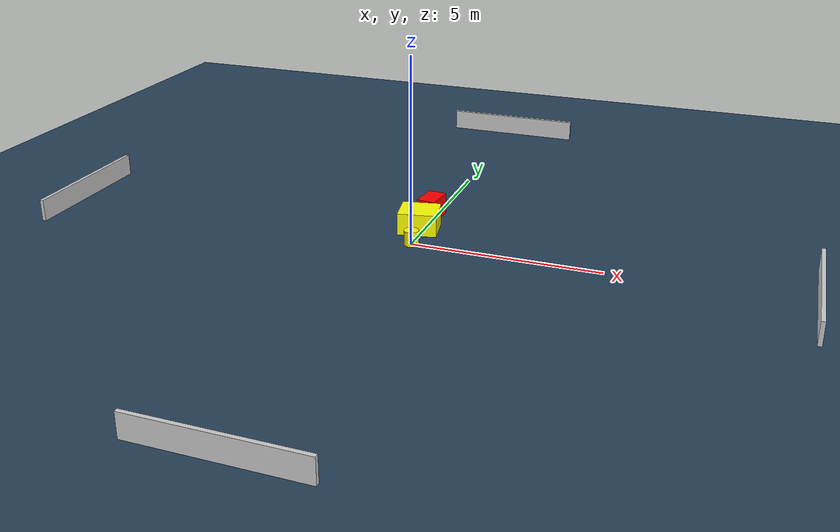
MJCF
<?xml version="1.0" ?>
<mujoco model="generated_environment">
  <option timestep="0.01" integrator="RK4" cone="elliptic"/>
  <default>
    <geom density="1"/>
  </default>
  <asset>
    <texture builtin="gradient" height="3072" name="skybox" rgb1="0.3 0.5 0.7" rgb2="0 0 0" type="skybox" width="512"/>
    <texture builtin="checker" height="300" name="groundplane" rgb1="0.2 0.3 0.4" rgb2="0.1 0.2 0.3" type="2d" width="300"/>
    <material name="groundplane" reflectance="0.2" texrepeat="5 5" texture="groundplane"/>
  </asset>
  <worldbody>
    <light dir="0 0 -1" directional="true" pos="0 0 1.5"/>
    <geom condim="3" friction="0.5 0.005 0.001" material="groundplane" name="floor" pos="0 0 0" size="0 0 0.05" type="plane"/>
    <body name="walls">
      <geom name="wall_1" condim="4" pos="-10.0 0.0 0.3" rgba="0.800000011920929 0.800000011920929 0.800000011920929 1.0" size="0.05 2.0 0.3" type="box"/>
      <geom name="wall_2" condim="4" pos="10.0 0.0 0.3" rgba="0.800000011920929 0.800000011920929 0.800000011920929 1.0" size="0.05 2.0 0.3" type="box"/>
      <geom name="wall_3" condim="4" pos="0.0 -10.0 0.3" rgba="0.800000011920929 0.800000011920929 0.800000011920929 1.0" size="2.0 0.05 0.3" type="box"/>
      <geom name="wall_4" condim="4" pos="0.0 10.0 0.3" rgba="0.800000011920929 0.800000011920929 0.800000011920929 1.0" size="2.0 0.05 0.3" type="box"/>
    </body>
    <body name="robot">
      <joint name="joint_x" type="slide" pos="0 0 0" axis="1 0 0"/>
      <joint name="joint_y" type="slide" pos="0 0 0" axis="0 1 0"/>
      <geom name="robot" type="cylinder" pos="0.0 0.0 0.2" size="0.2 0.2 0.0" mass="5.0" friction="1.0 0.005 0.0001" condim="4" rgba="1.0 1.0 0.0 1.0"/>
    </body>
    <body name="obstacle_1_movable">
      <geom name="obstacle_1_movable" condim="4" pos="-0.13486633316101324 0.9913634837779944 0.3" euler="0 0 190.57947079943952" friction="0.0 0.005 0.001" rgba="1.0 1.0 0.0 1.0" size="0.5243003026327333 0.4583700320972761 0.3" type="box" mass="0.1"/>
      <joint type="free"/>
    </body>
    <body name="obstacle_2_static">
      <geom name="obstacle_2_static" condim="4" pos="-0.12284482936134973 1.9487703009925899 0.3" euler="0 0 353.3595296900432" friction="0.0 0.005 0.001" rgba="1.0 0.0 0.0 1.0" size="0.2541182283874719 0.3873316995965044 0.3" type="box"/>
    </body>
  </worldbody>
  <actuator>
    <motor name="actuator_x" joint="joint_x" gear="1" ctrlrange="-1 1"/>
    <motor name="actuator_y" joint="joint_y" gear="1" ctrlrange="-1 1"/>
  </actuator>
</mujoco>
